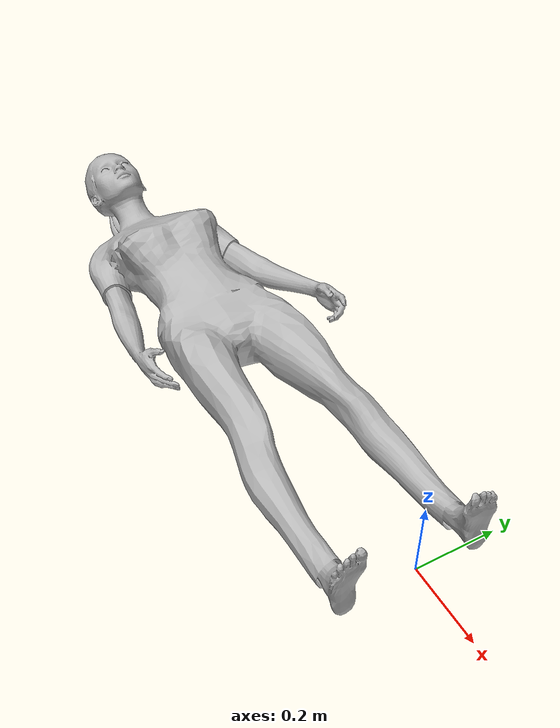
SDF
<?xml version='1.0'?>
<sdf version="1.5">
  <model name="test_human">
    <link name="link">

      <inertial>
        <pose>0 -0.1 0.95 0 0 0</pose>
        <mass>60.0</mass>
        <inertia>
          <ixx>24.88</ixx>
          <ixy>0.0</ixy>
          <ixz>0.0</ixz>
          <iyy>25.73</iyy>
          <iyz>0.0</iyz>
          <izz>2.48</izz>
        </inertia>
      </inertial>

      <collision name="bottom">
		<pose>0 0 0.01 0 0 1.57</pose>
		<geometry>
			<box>
				<size>0.5 0.35 0.02</size>
			</box>
		</geometry>
      </collision>

      <collision name="person">
		<pose>0 0 0.02 0 0 1.57</pose>
        <geometry>
          <mesh>
            <uri>model://test_human/meshes/test_human.dae</uri>
          </mesh>
        </geometry>
      </collision>

      <visual name="test_human_visual">
      <pose>0 0 0.02 0 0 1.57</pose>
      <geometry>
		<mesh>
			<uri>model://test_human/meshes/test_human.dae</uri>
		</mesh>
	  </geometry>
	  </visual>

    </link>
    <static>1</static>
  </model>
</sdf>
